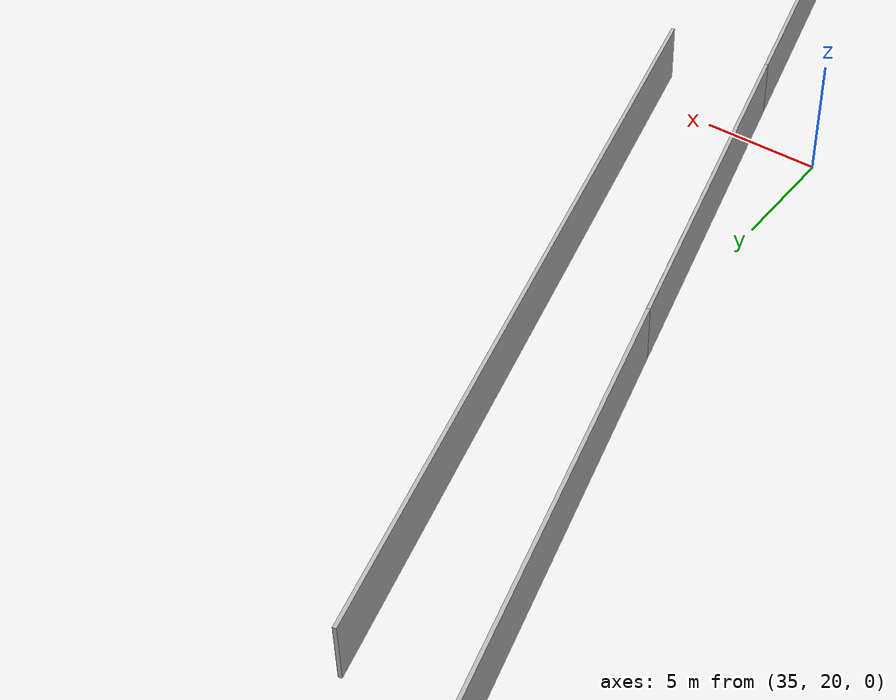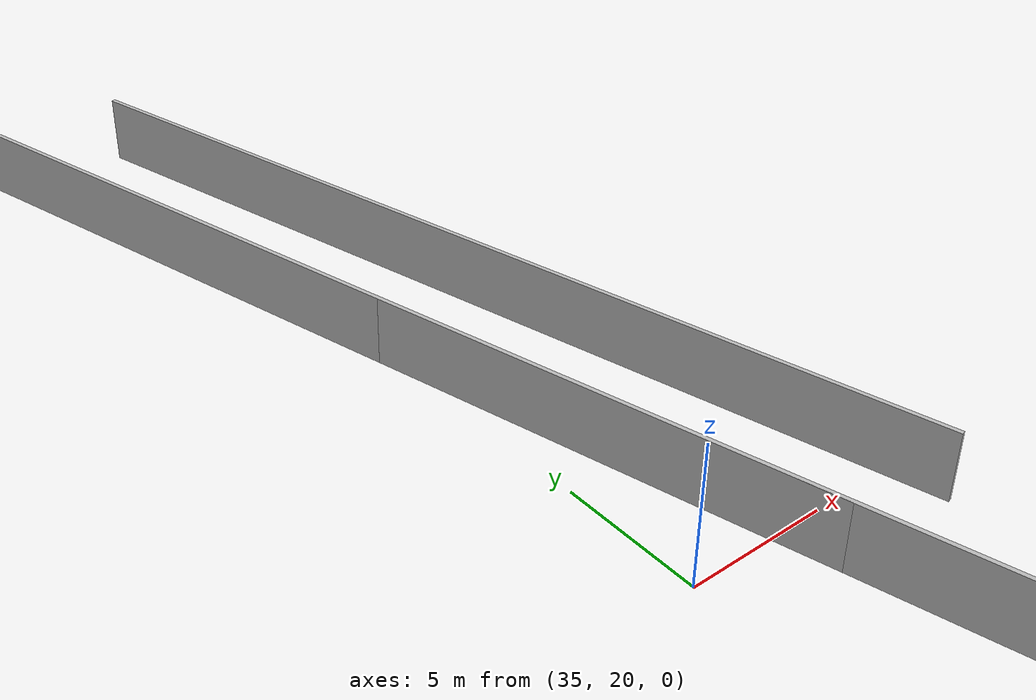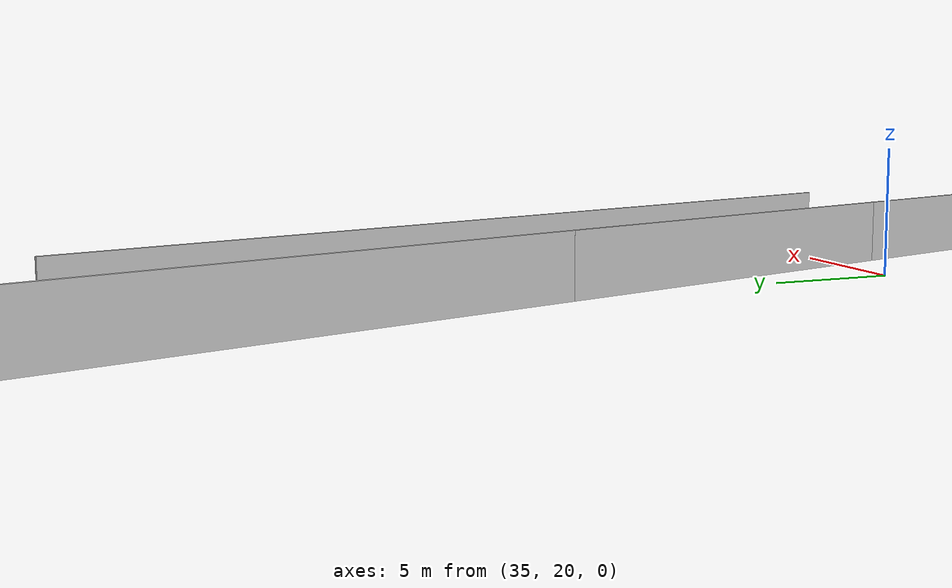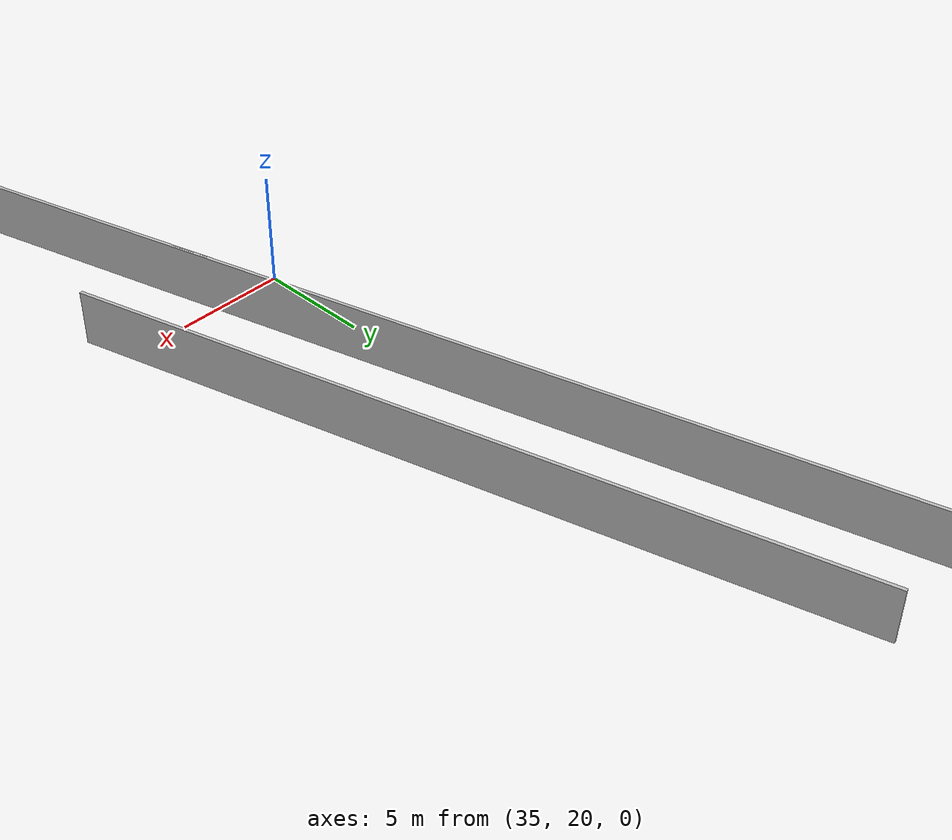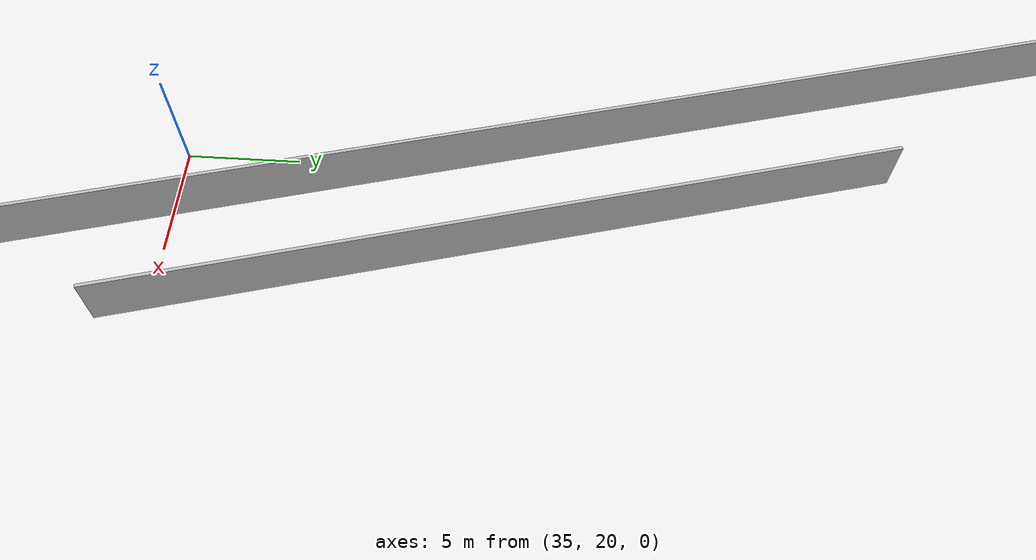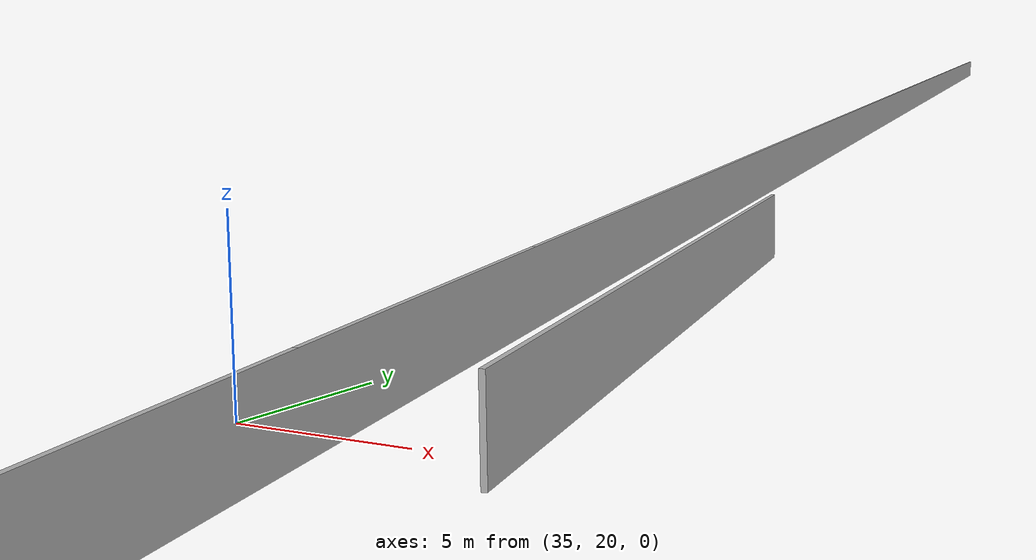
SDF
<?xml version="1.0" ?>
<sdf version="1.6">
  <model name="sps_0608">
    <pose frame="">0 0 0 0 -0 0</pose>
    <static>1</static>
    <self_collide>0</self_collide>
    <allow_auto_disable>0</allow_auto_disable>
    <link name="Wall96">
      <kinematic>0</kinematic>
      <gravity>1</gravity>
      <self_collide>0</self_collide>
      <collision name="collision">
        <geometry>
          <box>
            <size>34.401 0.15 2.5</size>
          </box>
        </geometry>
        <pose frame="">0 0 0 0 -0 0</pose>
      </collision>
      <visual name="visual">
        <geometry>
          <box>
            <size>34.401 0.15 2.5</size>
          </box>
        </geometry>
        <pose frame="">0 0 0 0 -0 0</pose>
        <cast_shadows>1</cast_shadows>
        <transparency>0.0</transparency>
      </visual>
      <pose frame="">38.8984 34.5136 1.25 0 -0 1.83122</pose>
    </link>
    <link name="Wall502">
      <kinematic>0</kinematic>
      <gravity>1</gravity>
      <self_collide>0</self_collide>
      <collision name="collision">
        <geometry>
          <box>
            <size>16.3128 0.15 2.5</size>
          </box>
        </geometry>
        <pose frame="">0 0 0 0 -0 0</pose>
      </collision>
      <visual name="visual">
        <geometry>
          <box>
            <size>16.3128 0.15 2.5</size>
          </box>
        </geometry>
        <pose frame="">0 0 0 0 -0 0</pose>
        <cast_shadows>1</cast_shadows>
        <transparency>0.0</transparency>
      </visual>
      <pose frame="">36.5697 25.7744 1.25 0 -0 1.83122</pose>
    </link>
    <link name="Wall1870">
      <kinematic>0</kinematic>
      <gravity>1</gravity>
      <self_collide>0</self_collide>
      <collision name="collision">
        <geometry>
          <box>
            <size>565.882 0.15 2.5</size>
          </box>
        </geometry>
        <pose frame="">0 0 0 0 -0 0</pose>
      </collision>
      <visual name="visual">
        <geometry>
          <box>
            <size>565.882 0.15 2.5</size>
          </box>
        </geometry>
        <pose frame="">0 0 0 0 -0 0</pose>
        <cast_shadows>1</cast_shadows>
        <transparency>0.0</transparency>
      </visual>
      <pose frame="">39.6438 14.2385 1.25 0 -0 1.83122</pose>
    </link>
  </model>
</sdf>
